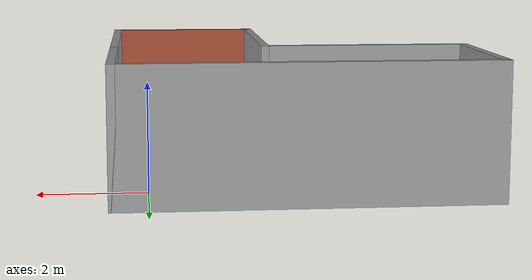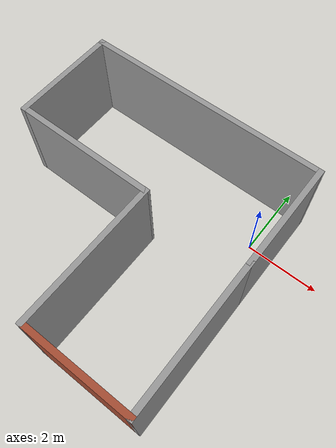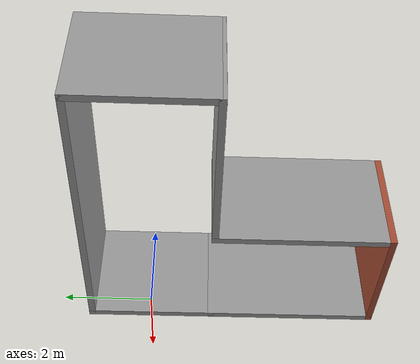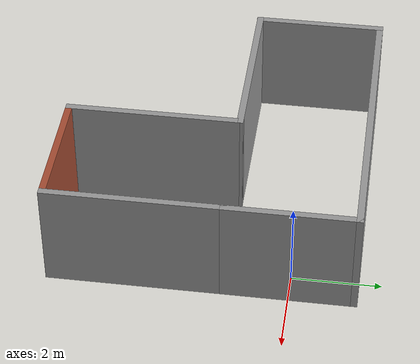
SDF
<?xml version='1.0'?>
<sdf version='1.7'>
  <model name='Simple_Maze'>
    <pose>-2.74 -1.92 0 0 -0 0</pose>
    <link name='Wall_11'>
      <collision name='Wall_11_Collision'>
        <geometry>
          <box>
            <size>3 0.15 2.5</size>
          </box>
        </geometry>
        <pose>0 0 1.25 0 -0 0</pose>
      </collision>
      <visual name='Wall_11_Visual'>
        <pose>0 0 1.25 0 -0 0</pose>
        <geometry>
          <box>
            <size>3 0.15 2.5</size>
          </box>
        </geometry>
        <material>
          <script>
            <uri>file://media/materials/scripts/gazebo.material</uri>
            <name>Gazebo/Bricks</name>
          </script>
          <ambient>1 1 1 1</ambient>
        </material>
        <meta>
          <layer>0</layer>
        </meta>
      </visual>
      <pose>1.925 -3.35 0 0 -0 0</pose>
    </link>
    <link name='Wall_36'>
      <collision name='Wall_36_Collision'>
        <geometry>
          <box>
            <size>4 0.15 2.5</size>
          </box>
        </geometry>
        <pose>0 0 1.25 0 -0 0</pose>
      </collision>
      <visual name='Wall_36_Visual'>
        <pose>0 0 1.25 0 -0 0</pose>
        <geometry>
          <box>
            <size>4 0.15 2.5</size>
          </box>
        </geometry>
        <material>
          <script>
            <uri>file://media/materials/scripts/gazebo.material</uri>
            <name>Gazebo/Grey</name>
          </script>
          <ambient>1 1 1 1</ambient>
        </material>
        <meta>
          <layer>0</layer>
        </meta>
      </visual>
      <pose>0.5 -1.425 0 0 -0 1.5708</pose>
    </link>
    <link name='Wall_37'>
      <collision name='Wall_37_Collision'>
        <geometry>
          <box>
            <size>4 0.15 2.5</size>
          </box>
        </geometry>
        <pose>0 0 1.25 0 -0 0</pose>
      </collision>
      <visual name='Wall_37_Visual'>
        <pose>0 0 1.25 0 -0 0</pose>
        <geometry>
          <box>
            <size>4 0.15 2.5</size>
          </box>
        </geometry>
        <material>
          <script>
            <uri>file://media/materials/scripts/gazebo.material</uri>
            <name>Gazebo/Grey</name>
          </script>
          <ambient>1 1 1 1</ambient>
        </material>
        <meta>
          <layer>0</layer>
        </meta>
      </visual>
      <pose>-1.425 0.5 0 0 -0 3.14</pose>
    </link>
    <link name='Wall_39'>
      <collision name='Wall_39_Collision'>
        <geometry>
          <box>
            <size>3 0.15 2.5</size>
          </box>
        </geometry>
        <pose>0 0 1.25 0 -0 0</pose>
      </collision>
      <visual name='Wall_39_Visual'>
        <pose>0 0 1.25 0 -0 0</pose>
        <geometry>
          <box>
            <size>3 0.15 2.5</size>
          </box>
        </geometry>
        <material>
          <script>
            <uri>file://media/materials/scripts/gazebo.material</uri>
            <name>Gazebo/Grey</name>
          </script>
          <ambient>1 1 1 1</ambient>
        </material>
        <meta>
          <layer>0</layer>
        </meta>
      </visual>
      <pose>-3.35 1.925 0 0 -0 1.5708</pose>
    </link>
    <link name='Wall_43'>
      <collision name='Wall_43_Collision'>
        <geometry>
          <box>
            <size>4 0.15 2.5</size>
          </box>
        </geometry>
        <pose>0 0 1.25 0 -0 0</pose>
      </collision>
      <visual name='Wall_43_Visual'>
        <pose>0 0 1.25 0 -0 0</pose>
        <geometry>
          <box>
            <size>4 0.15 2.5</size>
          </box>
        </geometry>
        <material>
          <script>
            <uri>file://media/materials/scripts/gazebo.material</uri>
            <name>Gazebo/Grey</name>
          </script>
          <ambient>1 1 1 1</ambient>
        </material>
        <meta>
          <layer>0</layer>
        </meta>
      </visual>
      <pose>3.35 -1.425 0 0 -0 1.5708</pose>
    </link>
    <link name='Wall_46'>
      <collision name='Wall_46_Collision'>
        <geometry>
          <box>
            <size>3 0.15 2.5</size>
          </box>
        </geometry>
        <pose>0 0 1.25 0 -0 0</pose>
      </collision>
      <visual name='Wall_46_Visual'>
        <pose>0 0 1.25 0 -0 0</pose>
        <geometry>
          <box>
            <size>3 0.15 2.5</size>
          </box>
        </geometry>
        <material>
          <script>
            <uri>file://media/materials/scripts/gazebo.material</uri>
            <name>Gazebo/Grey</name>
          </script>
          <ambient>1 1 1 1</ambient>
        </material>
        <meta>
          <layer>0</layer>
        </meta>
      </visual>
      <pose>3.35 1.925 0 0 -0 1.5708</pose>
    </link>
    <link name='Wall_48'>
      <collision name='Wall_48_Collision'>
        <geometry>
          <box>
            <size>6.85 0.15 2.5</size>
          </box>
        </geometry>
        <pose>0 0 1.25 0 -0 0</pose>
      </collision>
      <visual name='Wall_48_Visual'>
        <pose>0 0 1.25 0 -0 0</pose>
        <geometry>
          <box>
            <size>6.85 0.15 2.5</size>
          </box>
        </geometry>
        <material>
          <script>
            <uri>file://media/materials/scripts/gazebo.material</uri>
            <name>Gazebo/Grey</name>
          </script>
          <ambient>1 1 1 1</ambient>
        </material>
        <meta>
          <layer>0</layer>
        </meta>
      </visual>
      <pose>0 3.35 0 0 -0 0</pose>
    </link>
    <static>1</static>
  </model>
</sdf>
